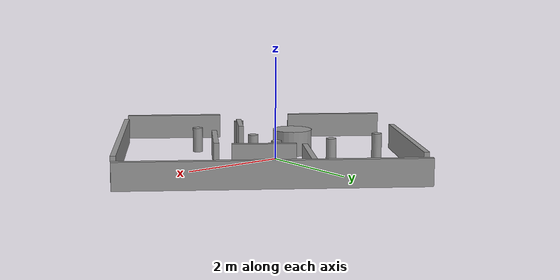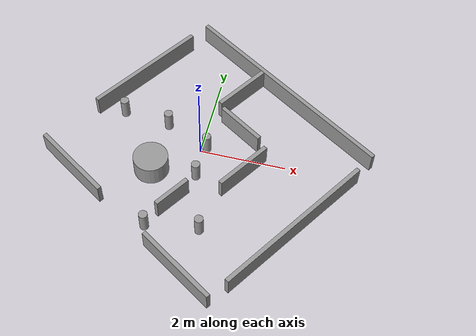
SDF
<?xml version='1.0'?>
<sdf version='1.6'>
  <model name='curvy_road'>
    <pose frame=''>0.0 0 0 0 0 1.</pose>
    <link name='Wall_0'>
      <collision name='Wall_0_Collision'>
        <geometry>
          <box>
            <size>0.9 0.1 0.5</size>
          </box>
        </geometry>
        <pose frame=''>0 0 0.25 0 -0 0</pose>
      </collision>
      <visual name='Wall_0_Visual'>
        <pose frame=''>0 0 0.25 0 -0 0</pose>
        <geometry>
          <box>
            <size>0.9 0.1 0.5</size>
          </box>
        </geometry>
        <material>
          <script>
            <uri>file://media/materials/scripts/gazebo.material</uri>
            <name>Gazebo/Grey</name>
          </script>
          <ambient>1 1 1 1</ambient>
        </material>
        <meta>
          <layer>0</layer>
        </meta>
      </visual>
      <pose frame=''>-1.4 -0.62 0 0 -0 0</pose>
    </link>
    <link name='Wall_1_4'>
      <collision name='Wall_1_4_Collision'>
        <geometry>
          <box>
            <size>0.1 2.0 0.5</size>
          </box>
        </geometry>
        <pose frame=''>0 0 0.25 0 -0 0</pose>
      </collision>
      <visual name='Wall_1_4_Visual'>
        <pose frame=''>0 0 0.25 0 -0 0</pose>
        <geometry>
          <box>
            <size>0.1 2.0 0.5</size>
          </box>
        </geometry>
        <material>
          <script>
            <uri>file://media/materials/scripts/gazebo.material</uri>
            <name>Gazebo/Grey</name>
          </script>
          <ambient>1 1 1 1</ambient>
        </material>
        <meta>
          <layer>0</layer>
        </meta>
      </visual>
      <pose frame=''>-2.5 1.5 0 0 0 0</pose>
    </link>
    <link name='Wall_1_5'>
      <collision name='Wall_1_5_Collision'>
        <geometry>
          <box>
            <size>0.1 2.0 0.5</size>
          </box>
        </geometry>
        <pose frame=''>0 0 0.25 0 -0 0</pose>
      </collision>
      <visual name='Wall_1_5_Visual'>
        <pose frame=''>0 0 0.25 0 -0 0</pose>
        <geometry>
          <box>
            <size>0.1 2.0 0.5</size>
          </box>
        </geometry>
        <material>
          <script>
            <uri>file://media/materials/scripts/gazebo.material</uri>
            <name>Gazebo/Grey</name>
          </script>
          <ambient>1 1 1 1</ambient>
        </material>
        <meta>
          <layer>0</layer>
        </meta>
      </visual>
      <pose frame=''>-2.5 -2.0 0 0 0 0</pose>
    </link>
    <link name='Wall_1_6'>
      <collision name='Wall_1_6_Collision'>
        <geometry>
          <box>
            <size>0.1 5.5 0.5</size>
          </box>
        </geometry>
        <pose frame=''>0 0 0.25 0 -0 0</pose>
      </collision>
      <visual name='Wall_1_6_Visual'>
        <pose frame=''>0 0 0.25 0 -0 0</pose>
        <geometry>
          <box>
            <size>0.1 5.5 0.5</size>
          </box>
        </geometry>
        <material>
          <script>
            <uri>file://media/materials/scripts/gazebo.material</uri>
            <name>Gazebo/Grey</name>
          </script>
          <ambient>1 1 1 1</ambient>
        </material>
        <meta>
          <layer>0</layer>
        </meta>
      </visual>
      <pose frame=''>2.5 -0.25 0 0 0 0</pose>
    </link>
    <link name='Wall_1'>
      <collision name='Wall_1_Collision'>
        <geometry>
          <box>
            <size>4 0.1 0.5</size>
          </box>
        </geometry>
        <pose frame=''>0 0 0.25 0 -0 0</pose>
      </collision>
      <visual name='Wall_1_Visual'>
        <pose frame=''>0 0 0.25 0 -0 0</pose>
        <geometry>
          <box>
            <size>4 0.1 0.5</size>
          </box>
        </geometry>
        <material>
          <script>
            <uri>file://media/materials/scripts/gazebo.material</uri>
            <name>Gazebo/Grey</name>
          </script>
          <ambient>1 1 1 1</ambient>
        </material>
        <meta>
          <layer>0</layer>
        </meta>
      </visual>
      <pose frame=''>0 -3. 0 0 -0 0</pose>
    </link>
    <link name='Wall_2'>
      <collision name='Wall_2_Collision'>
        <geometry>
          <box>
            <size>1.0 0.1 0.5</size>
          </box>
        </geometry>
        <pose frame=''>0 0 0.25 0 -0 0</pose>
      </collision>
      <visual name='Wall_2_Visual'>
        <pose frame=''>0 0 0.25 0 -0 0</pose>
        <geometry>
          <box>
            <size>1.4 0.1 0.5</size>
          </box>
        </geometry>
        <material>
          <script>
            <uri>file://media/materials/scripts/gazebo.material</uri>
            <name>Gazebo/Grey</name>
          </script>
          <ambient>1 1 1 1</ambient>
        </material>
        <meta>
          <layer>0</layer>
        </meta>
      </visual>
      <pose frame=''>1.75 0.45 0 0 -0 0</pose>
    </link>
    <link name='Wall_3'>
      <collision name='Wall_2_Collision'>
        <geometry>
          <box>
            <size>3.0 0.1 0.5</size>
          </box>
        </geometry>
        <pose frame=''>0 0 0.25 0 -0 0</pose>
      </collision>
      <visual name='Wall_2_Visual'>
        <pose frame=''>0 0 0.25 0 -0 0</pose>
        <geometry>
          <box>
            <size>3.0 0.1 0.5</size>
          </box>
        </geometry>
        <material>
          <script>
            <uri>file://media/materials/scripts/gazebo.material</uri>
            <name>Gazebo/Grey</name>
          </script>
          <ambient>1 1 1 1</ambient>
        </material>
        <meta>
          <layer>0</layer>
        </meta>
      </visual>
      <pose frame=''>0.5 2.5 0 0 -0 0</pose>
    </link>

    <link name='Wall_4'>
      <collision name='Wall_4_Collision'>
        <geometry>
          <box>
            <size>1.2 0.1 0.5</size>
          </box>
        </geometry>
        <pose frame=''>0 0 0.25 0 -0 0</pose>
      </collision>
      <visual name='Wall_4_Visual'>
        <pose frame=''>0 0 0.25 0 -0 0</pose>
        <geometry>
          <box>
            <size>1.2 0.1 0.5</size>
          </box>
        </geometry>
        <material>
          <script>
            <uri>file://media/materials/scripts/gazebo.material</uri>
            <name>Gazebo/Grey</name>
          </script>
          <ambient>1 1 1 1</ambient>
        </material>
        <meta>
          <layer>0</layer>
        </meta>
      </visual>
      <pose frame=''>1 -0.3 0 0 -0 1.5708</pose>
    </link>

    <link name='Wall_6'>
      <collision name='Wall_6_Collision'>
        <geometry>
          <box>
            <size>1.4 0.1 0.5</size>
          </box>
        </geometry>
        <pose frame=''>0 0 0.25 0 -0 0</pose>
      </collision>
      <visual name='Wall_6_Visual'>
        <pose frame=''>0 0 0.25 0 -0 0</pose>
        <geometry>
          <box>
            <size>1.4 0.1 0.5</size>
          </box>
        </geometry>
        <material>
          <script>
            <uri>file://media/materials/scripts/gazebo.material</uri>
            <name>Gazebo/Grey</name>
          </script>
          <ambient>1 1 1 1</ambient>
        </material>
        <meta>
          <layer>0</layer>
        </meta>
      </visual>
      <pose frame=''>0.22 -1.18 0 0 -0 0</pose>
    </link>

    <link name='Pole_1'>
      <collision name='Pole_1_Collision'>
        <geometry>
            <cylinder>
              <radius>0.1</radius>
              <length>0.5</length>
            </cylinder>
        </geometry>
        <pose frame=''>0 0 0 0 0 0</pose>
      </collision>
      <visual name='Pole_1_Visual'>
        <pose frame=''>0 0 0 0 0 0</pose>
        <geometry>
            <cylinder>
              <radius>0.1</radius>
              <length>0.5</length>
            </cylinder>
        </geometry>
        <material>
          <script>
            <uri>file://media/materials/scripts/gazebo.material</uri>
            <name>Gazebo/Grey</name>
          </script>
          <ambient>1 1 1 1</ambient>
        </material>
        <meta>
          <layer>0</layer>
        </meta>
      </visual>
      <pose frame=''>0 1.1 0.15 0 -0 0</pose>
    </link>

    <link name='Pole_2'>
      <collision name='Pole_2_Collision'>
        <geometry>
            <cylinder>
              <radius>0.1</radius>
              <length>0.5</length>
            </cylinder>
        </geometry>
        <pose frame=''>0 0 0 0 0 0</pose>
      </collision>
      <visual name='Pole_2_Visual'>
        <pose frame=''>0 0 0 0 0 0</pose>
        <geometry>
            <cylinder>
              <radius>0.1</radius>
              <length>0.5</length>
            </cylinder>
        </geometry>
        <material>
          <script>
            <uri>file://media/materials/scripts/gazebo.material</uri>
            <name>Gazebo/Grey</name>
          </script>
          <ambient>1 1 1 1</ambient>
        </material>
        <meta>
          <layer>0</layer>
        </meta>
      </visual>
      <pose frame=''>0.2 0 0.15 0 -0 0</pose>
    </link>

    <link name='Pole_3'>
      <collision name='Pole_3_Collision'>
        <geometry>
            <cylinder>
              <radius>0.1</radius>
              <length>0.5</length>
            </cylinder>
        </geometry>
        <pose frame=''>0 0 0 0 0 0</pose>
      </collision>
      <visual name='Pole_3_Visual'>
        <pose frame=''>0 0 0 0 0 0</pose>
        <geometry>
            <cylinder>
              <radius>0.1</radius>
              <length>0.5</length>
            </cylinder>
        </geometry>
        <material>
          <script>
            <uri>file://media/materials/scripts/gazebo.material</uri>
            <name>Gazebo/Grey</name>
          </script>
          <ambient>1 1 1 1</ambient>
        </material>
        <meta>
          <layer>0</layer>
        </meta>
      </visual>
      <pose frame=''>-1.4 -1.5 0.15 0 -0 0</pose>
    </link>

    <link name='Pole_4'>
      <collision name='Pole_4_Collision'>
        <geometry>
            <cylinder>
              <radius>0.1</radius>
              <length>0.5</length>
            </cylinder>
        </geometry>
        <pose frame=''>0 0 0 0 0 0</pose>
      </collision>
      <visual name='Pole_4_Visual'>
        <pose frame=''>0 0 0 0 0 0</pose>
        <geometry>
            <cylinder>
              <radius>0.1</radius>
              <length>0.5</length>
            </cylinder>
        </geometry>
        <material>
          <script>
            <uri>file://media/materials/scripts/gazebo.material</uri>
            <name>Gazebo/Grey</name>
          </script>
          <ambient>1 1 1 1</ambient>
        </material>
        <meta>
          <layer>0</layer>
        </meta>
      </visual>
      <pose frame=''>-2.2 -0.6 0.15 0 0 -0 0</pose>
    </link>

    <link name='Pole_5'>
      <collision name='Pole_5_Collision'>
        <geometry>
            <cylinder>
              <radius>0.1</radius>
              <length>0.5</length>
            </cylinder>
        </geometry>
        <pose frame=''>0 0 0 0 0 0</pose>
      </collision>
      <visual name='Pole_5_Visual'>
        <pose frame=''>0 0 0 0 0 0</pose>
        <geometry>
            <cylinder>
              <radius>0.1</radius>
              <length>0.5</length>
            </cylinder>
        </geometry>
        <material>
          <script>
            <uri>file://media/materials/scripts/gazebo.material</uri>
            <name>Gazebo/Grey</name>
          </script>
          <ambient>1 1 1 1</ambient>
        </material>
        <meta>
          <layer>0</layer>
        </meta>
      </visual>
      <pose frame=''>-0.5 -0.4 0.15 0 0 -0 0</pose>
    </link>

    <link name='Pole_6'>
      <collision name='Pole_6_Collision'>
        <geometry>
            <cylinder>
              <radius>0.4</radius>
              <length>0.5</length>
            </cylinder>
        </geometry>
        <pose frame=''>0 0 0 0 0 0</pose>
      </collision>
      <visual name='Pole_6_Visual'>
        <pose frame=''>0 0 0 0 0 0</pose>
        <geometry>
            <cylinder>
              <radius>0.4</radius>
              <length>0.5</length>
            </cylinder>
        </geometry>
        <material>
          <script>
            <uri>file://media/materials/scripts/gazebo.material</uri>
            <name>Gazebo/Grey</name>
          </script>
          <ambient>1 1 1 1</ambient>
        </material>
        <meta>
          <layer>0</layer>
        </meta>
      </visual>
      <pose frame=''>-1.1 0.45 0.15 0 0 -0 0</pose>
    </link>

    <link name='Pole_7'>
      <collision name='Pole_7_Collision'>
        <geometry>
            <cylinder>
              <radius>0.1</radius>
              <length>0.5</length>
            </cylinder>
        </geometry>
        <pose frame=''>0 0 0 0 0 0</pose>
      </collision>
      <visual name='Pole_7_Visual'>
        <pose frame=''>0 0 0 0 0 0</pose>
        <geometry>
            <cylinder>
              <radius>0.1</radius>
              <length>0.5</length>
            </cylinder>
        </geometry>
        <material>
          <script>
            <uri>file://media/materials/scripts/gazebo.material</uri>
            <name>Gazebo/Grey</name>
          </script>
          <ambient>1 1 1 1</ambient>
        </material>
        <meta>
          <layer>0</layer>
        </meta>
      </visual>
      <pose frame=''>-0.5 2.1 0.15 0 0 -0 0</pose>
    </link>

    <static>1</static>
  </model>
</sdf>
